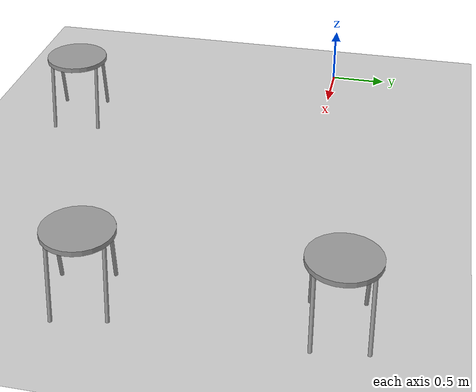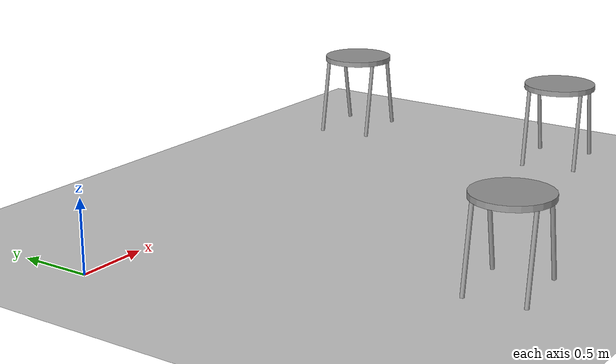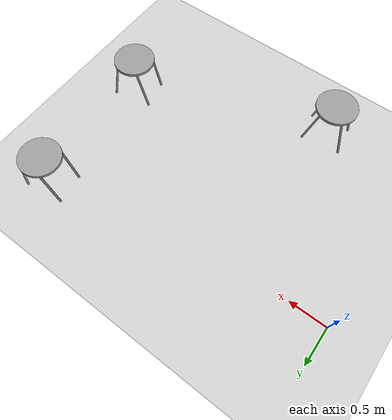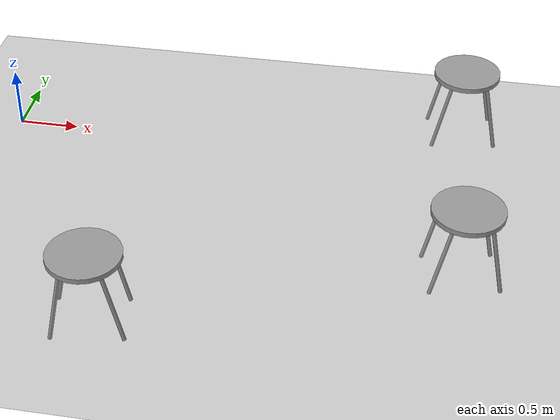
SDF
<sdf version="1.6">
 <world name="default">
  <model name="ground_plane">
   <static>1</static>
   <link name="link">
    <collision name="collision">
     <geometry><plane><normal>0 0 1</normal><size>100 100</size></plane></geometry>
     <surface><friction><ode><mu>100</mu><mu2>50</mu2></ode></friction></surface>
    </collision>
    <visual name="visual">
     <cast_shadows>0</cast_shadows>
     <geometry><plane><normal>0 0 1</normal><size>100 100</size></plane></geometry>
     <material>
      <script><uri>file://media/materials/scripts/gazebo.material</uri><name>Gazebo/Grey</name></script>
     </material>
    </visual>
   </link>
  </model>
  <model name="chair01">
   <link name="link_1">
    <pose>0 0 0.6 0 -0 0</pose>
    <inertial>
     <mass>1</mass>
     <inertia><ixx>0.145833</ixx><ixy>0</ixy><ixz>0</ixz><iyy>0.145833</iyy><iyz>0</iyz><izz>0.125</izz></inertia>
    </inertial>
    <visual name="visual">
     <geometry><cylinder><radius>0.27</radius><length>0.04</length></cylinder></geometry>
     <material>
      <lighting>1</lighting>
      <script><uri>file://media/materials/scripts/gazebo.material</uri><name>Gazebo/Grey</name></script>
      <shader type="pixel"><normal_map>__default__</normal_map></shader>
      <ambient>0.3 0.3 0.3 1</ambient>
      <diffuse>0.7 0.7 0.7 1</diffuse>
      <specular>0.01 0.01 0.01 1</specular>
      <emissive>0 0 0 1</emissive>
     </material>
    </visual>
    <collision name="collision">
     <geometry><cylinder><radius>0.27</radius><length>0.04</length></cylinder></geometry>
     <surface>
      <friction>
       <ode><mu>1</mu><mu2>1</mu2><fdir1>0 0 0</fdir1><slip1>0</slip1><slip2>0</slip2></ode>
       <torsional>
        <coefficient>1</coefficient>
        <patch_radius>0</patch_radius>
        <surface_radius>0</surface_radius>
        <use_patch_radius>1</use_patch_radius>
        <ode><slip>0</slip></ode>
       </torsional>
      </friction>
      <bounce><restitution_coefficient>0</restitution_coefficient><threshold>1e+06</threshold></bounce>
      <contact>
       <collide_without_contact>0</collide_without_contact>
       <collide_without_contact_bitmask>1</collide_without_contact_bitmask>
       <collide_bitmask>1</collide_bitmask>
       <ode>
        <soft_cfm>0</soft_cfm>
        <soft_erp>0.2</soft_erp>
        <kp>1e+13</kp>
        <kd>1</kd>
        <max_vel>0.01</max_vel>
        <min_depth>0</min_depth>
       </ode>
       <bullet>
        <split_impulse>1</split_impulse>
        <split_impulse_penetration_threshold>-0.01</split_impulse_penetration_threshold>
        <soft_cfm>0</soft_cfm>
        <soft_erp>0.2</soft_erp>
        <kp>1e+13</kp>
        <kd>1</kd>
       </bullet>
      </contact>
     </surface>
    </collision>
   </link>
   <link name="link_2">
    <pose>0.2 0.2 0.3 0 -0.2 0</pose>
    <inertial>
     <mass>1</mass>
     <inertia><ixx>0.145833</ixx><ixy>0</ixy><ixz>0</ixz><iyy>0.145833</iyy><iyz>0</iyz><izz>0.125</izz></inertia>
    </inertial>
    <visual name="visual">
     <geometry><cylinder><radius>0.015</radius><length>0.6</length></cylinder></geometry>
     <material>
      <lighting>1</lighting>
      <script><uri>file://media/materials/scripts/gazebo.material</uri><name>Gazebo/Grey</name></script>
      <shader type="pixel"><normal_map>__default__</normal_map></shader>
      <ambient>0.3 0.3 0.3 1</ambient>
      <diffuse>0.7 0.7 0.7 1</diffuse>
      <specular>0.01 0.01 0.01 1</specular>
      <emissive>0 0 0 1</emissive>
     </material>
    </visual>
    <collision name="collision">
     <geometry><cylinder><radius>0.015</radius><length>0.6</length></cylinder></geometry>
     <surface>
      <friction>
       <ode><mu>1</mu><mu2>1</mu2><fdir1>0 0 0</fdir1><slip1>0</slip1><slip2>0</slip2></ode>
       <torsional>
        <coefficient>1</coefficient>
        <patch_radius>0</patch_radius>
        <surface_radius>0</surface_radius>
        <use_patch_radius>1</use_patch_radius>
        <ode><slip>0</slip></ode>
       </torsional>
      </friction>
      <bounce><restitution_coefficient>0</restitution_coefficient><threshold>1e+06</threshold></bounce>
      <contact>
       <collide_without_contact>0</collide_without_contact>
       <collide_without_contact_bitmask>1</collide_without_contact_bitmask>
       <collide_bitmask>1</collide_bitmask>
       <ode>
        <soft_cfm>0</soft_cfm>
        <soft_erp>0.2</soft_erp>
        <kp>1e+13</kp>
        <kd>1</kd>
        <max_vel>0.01</max_vel>
        <min_depth>0</min_depth>
       </ode>
       <bullet>
        <split_impulse>1</split_impulse>
        <split_impulse_penetration_threshold>-0.01</split_impulse_penetration_threshold>
        <soft_cfm>0</soft_cfm>
        <soft_erp>0.2</soft_erp>
        <kp>1e+13</kp>
        <kd>1</kd>
       </bullet>
      </contact>
     </surface>
    </collision>
   </link>
   <link name="link_2_clone">
    <pose>0.2 -0.2 0.3 0 -0.2 0</pose>
    <inertial>
     <mass>1</mass>
     <inertia><ixx>0.145833</ixx><ixy>0</ixy><ixz>0</ixz><iyy>0.145833</iyy><iyz>0</iyz><izz>0.125</izz></inertia>
    </inertial>
    <visual name="visual">
     <geometry><cylinder><radius>0.015</radius><length>0.6</length></cylinder></geometry>
     <material>
      <lighting>1</lighting>
      <script><uri>file://media/materials/scripts/gazebo.material</uri><name>Gazebo/Grey</name></script>
      <shader type="pixel"><normal_map>__default__</normal_map></shader>
      <ambient>0.3 0.3 0.3 1</ambient>
      <diffuse>0.7 0.7 0.7 1</diffuse>
      <specular>0.01 0.01 0.01 1</specular>
      <emissive>0 0 0 1</emissive>
     </material>
    </visual>
    <collision name="collision">
     <geometry><cylinder><radius>0.015</radius><length>0.6</length></cylinder></geometry>
     <surface>
      <friction>
       <ode><mu>1</mu><mu2>1</mu2><fdir1>0 0 0</fdir1><slip1>0</slip1><slip2>0</slip2></ode>
       <torsional>
        <coefficient>1</coefficient>
        <patch_radius>0</patch_radius>
        <surface_radius>0</surface_radius>
        <use_patch_radius>1</use_patch_radius>
        <ode><slip>0</slip></ode>
       </torsional>
      </friction>
      <bounce><restitution_coefficient>0</restitution_coefficient><threshold>1e+06</threshold></bounce>
      <contact>
       <collide_without_contact>0</collide_without_contact>
       <collide_without_contact_bitmask>1</collide_without_contact_bitmask>
       <collide_bitmask>1</collide_bitmask>
       <ode>
        <soft_cfm>0</soft_cfm>
        <soft_erp>0.2</soft_erp>
        <kp>1e+13</kp>
        <kd>1</kd>
        <max_vel>0.01</max_vel>
        <min_depth>0</min_depth>
       </ode>
       <bullet>
        <split_impulse>1</split_impulse>
        <split_impulse_penetration_threshold>-0.01</split_impulse_penetration_threshold>
        <soft_cfm>0</soft_cfm>
        <soft_erp>0.2</soft_erp>
        <kp>1e+13</kp>
        <kd>1</kd>
       </bullet>
      </contact>
     </surface>
    </collision>
   </link>
   <link name="link_2_clone_0">
    <pose>-0.2 -0.2 0.3 0 0.2 0</pose>
    <inertial>
     <mass>1</mass>
     <inertia><ixx>0.145833</ixx><ixy>0</ixy><ixz>0</ixz><iyy>0.145833</iyy><iyz>0</iyz><izz>0.125</izz></inertia>
    </inertial>
    <visual name="visual">
     <geometry><cylinder><radius>0.015</radius><length>0.6</length></cylinder></geometry>
     <material>
      <lighting>1</lighting>
      <script><uri>file://media/materials/scripts/gazebo.material</uri><name>Gazebo/Grey</name></script>
      <shader type="pixel"><normal_map>__default__</normal_map></shader>
      <ambient>0.3 0.3 0.3 1</ambient>
      <diffuse>0.7 0.7 0.7 1</diffuse>
      <specular>0.01 0.01 0.01 1</specular>
      <emissive>0 0 0 1</emissive>
     </material>
    </visual>
    <collision name="collision">
     <geometry><cylinder><radius>0.015</radius><length>0.6</length></cylinder></geometry>
     <surface>
      <friction>
       <ode><mu>1</mu><mu2>1</mu2><fdir1>0 0 0</fdir1><slip1>0</slip1><slip2>0</slip2></ode>
       <torsional>
        <coefficient>1</coefficient>
        <patch_radius>0</patch_radius>
        <surface_radius>0</surface_radius>
        <use_patch_radius>1</use_patch_radius>
        <ode><slip>0</slip></ode>
       </torsional>
      </friction>
      <bounce><restitution_coefficient>0</restitution_coefficient><threshold>1e+06</threshold></bounce>
      <contact>
       <collide_without_contact>0</collide_without_contact>
       <collide_without_contact_bitmask>1</collide_without_contact_bitmask>
       <collide_bitmask>1</collide_bitmask>
       <ode>
        <soft_cfm>0</soft_cfm>
        <soft_erp>0.2</soft_erp>
        <kp>1e+13</kp>
        <kd>1</kd>
        <max_vel>0.01</max_vel>
        <min_depth>0</min_depth>
       </ode>
       <bullet>
        <split_impulse>1</split_impulse>
        <split_impulse_penetration_threshold>-0.01</split_impulse_penetration_threshold>
        <soft_cfm>0</soft_cfm>
        <soft_erp>0.2</soft_erp>
        <kp>1e+13</kp>
        <kd>1</kd>
       </bullet>
      </contact>
     </surface>
    </collision>
   </link>
   <link name="link_2_clone_1">
    <pose>-0.2 0.2 0.3 0 0.21 0</pose>
    <inertial>
     <mass>1</mass>
     <inertia><ixx>0.145833</ixx><ixy>0</ixy><ixz>0</ixz><iyy>0.145833</iyy><iyz>0</iyz><izz>0.125</izz></inertia>
    </inertial>
    <visual name="visual">
     <geometry><cylinder><radius>0.015</radius><length>0.6</length></cylinder></geometry>
     <material>
      <lighting>1</lighting>
      <script><uri>file://media/materials/scripts/gazebo.material</uri><name>Gazebo/Grey</name></script>
      <shader type="pixel"><normal_map>__default__</normal_map></shader>
      <ambient>0.3 0.3 0.3 1</ambient>
      <diffuse>0.7 0.7 0.7 1</diffuse>
      <specular>0.01 0.01 0.01 1</specular>
      <emissive>0 0 0 1</emissive>
     </material>
    </visual>
    <collision name="collision">
     <geometry><cylinder><radius>0.015</radius><length>0.6</length></cylinder></geometry>
     <surface>
      <friction>
       <ode><mu>1</mu><mu2>1</mu2><fdir1>0 0 0</fdir1><slip1>0</slip1><slip2>0</slip2></ode>
       <torsional>
        <coefficient>1</coefficient>
        <patch_radius>0</patch_radius>
        <surface_radius>0</surface_radius>
        <use_patch_radius>1</use_patch_radius>
        <ode><slip>0</slip></ode>
       </torsional>
      </friction>
      <bounce><restitution_coefficient>0</restitution_coefficient><threshold>1e+06</threshold></bounce>
      <contact>
       <collide_without_contact>0</collide_without_contact>
       <collide_without_contact_bitmask>1</collide_without_contact_bitmask>
       <collide_bitmask>1</collide_bitmask>
       <ode>
        <soft_cfm>0</soft_cfm>
        <soft_erp>0.2</soft_erp>
        <kp>1e+13</kp>
        <kd>1</kd>
        <max_vel>0.01</max_vel>
        <min_depth>0</min_depth>
       </ode>
       <bullet>
        <split_impulse>1</split_impulse>
        <split_impulse_penetration_threshold>-0.01</split_impulse_penetration_threshold>
        <soft_cfm>0</soft_cfm>
        <soft_erp>0.2</soft_erp>
        <kp>1e+13</kp>
        <kd>1</kd>
       </bullet>
      </contact>
     </surface>
    </collision>
   </link>
   <joint name="link_1_JOINT_1" type="revolute">
    <parent>link_1</parent>
    <child>link_2</child>
    <axis>
     <xyz>0 0 1</xyz>
     <use_parent_model_frame>0</use_parent_model_frame>
     <limit>
      <lower>-1.79769e+308</lower>
      <upper>1.79769e+308</upper>
      <effort>-1</effort>
      <velocity>-1</velocity>
     </limit>
     <dynamics>
      <spring_reference>0</spring_reference>
      <spring_stiffness>0</spring_stiffness>
      <damping>0</damping>
     </dynamics>
    </axis>
    <physics>
     <ode><limit><cfm>0</cfm><erp>0.2</erp></limit><suspension><cfm>0</cfm><erp>0.2</erp></suspension></ode>
    </physics>
   </joint>
   <joint name="link_1_JOINT_2" type="revolute">
    <parent>link_1</parent>
    <child>link_2_clone</child>
    <axis>
     <xyz>0 0 1</xyz>
     <use_parent_model_frame>0</use_parent_model_frame>
     <limit>
      <lower>-1.79769e+308</lower>
      <upper>1.79769e+308</upper>
      <effort>-1</effort>
      <velocity>-1</velocity>
     </limit>
     <dynamics>
      <spring_reference>0</spring_reference>
      <spring_stiffness>0</spring_stiffness>
      <damping>0</damping>
     </dynamics>
    </axis>
    <physics>
     <ode><limit><cfm>0</cfm><erp>0.2</erp></limit><suspension><cfm>0</cfm><erp>0.2</erp></suspension></ode>
    </physics>
   </joint>
   <joint name="link_1_JOINT_3" type="revolute">
    <parent>link_1</parent>
    <child>link_2_clone_0</child>
    <axis>
     <xyz>0 0 1</xyz>
     <use_parent_model_frame>0</use_parent_model_frame>
     <limit>
      <lower>-1.79769e+308</lower>
      <upper>1.79769e+308</upper>
      <effort>-1</effort>
      <velocity>-1</velocity>
     </limit>
     <dynamics>
      <spring_reference>0</spring_reference>
      <spring_stiffness>0</spring_stiffness>
      <damping>0</damping>
     </dynamics>
    </axis>
    <physics>
     <ode><limit><cfm>0</cfm><erp>0.2</erp></limit><suspension><cfm>0</cfm><erp>0.2</erp></suspension></ode>
    </physics>
   </joint>
   <joint name="link_1_JOINT_4" type="revolute">
    <parent>link_1</parent>
    <child>link_2_clone_1</child>
    <axis>
     <xyz>0 0 1</xyz>
     <use_parent_model_frame>0</use_parent_model_frame>
     <limit>
      <lower>-1.79769e+308</lower>
      <upper>1.79769e+308</upper>
      <effort>-1</effort>
      <velocity>-1</velocity>
     </limit>
     <dynamics>
      <spring_reference>0</spring_reference>
      <spring_stiffness>0</spring_stiffness>
      <damping>0</damping>
     </dynamics>
    </axis>
    <physics>
     <ode><limit><cfm>0</cfm><erp>0.2</erp></limit><suspension><cfm>0</cfm><erp>0.2</erp></suspension></ode>
    </physics>
   </joint>
   <static>0</static>
   <pose>3.83965 -1.33733 -0.003008 -0.000347 -0.000284 0.197622</pose>
  </model>
  <model name="chair01_2">
   <link name="link_1">
    <pose>0 0 0.6 0 -0 0</pose>
    <inertial>
     <mass>1</mass>
     <inertia><ixx>0.145833</ixx><ixy>0</ixy><ixz>0</ixz><iyy>0.145833</iyy><iyz>0</iyz><izz>0.125</izz></inertia>
    </inertial>
    <visual name="visual">
     <geometry><cylinder><radius>0.27</radius><length>0.04</length></cylinder></geometry>
     <material>
      <lighting>1</lighting>
      <script><uri>file://media/materials/scripts/gazebo.material</uri><name>Gazebo/Grey</name></script>
      <shader type="pixel"><normal_map>__default__</normal_map></shader>
      <ambient>0.3 0.3 0.3 1</ambient>
      <diffuse>0.7 0.7 0.7 1</diffuse>
      <specular>0.01 0.01 0.01 1</specular>
      <emissive>0 0 0 1</emissive>
     </material>
    </visual>
    <collision name="collision">
     <geometry><cylinder><radius>0.27</radius><length>0.04</length></cylinder></geometry>
     <surface>
      <friction>
       <ode><mu>1</mu><mu2>1</mu2><fdir1>0 0 0</fdir1><slip1>0</slip1><slip2>0</slip2></ode>
       <torsional>
        <coefficient>1</coefficient>
        <patch_radius>0</patch_radius>
        <surface_radius>0</surface_radius>
        <use_patch_radius>1</use_patch_radius>
        <ode><slip>0</slip></ode>
       </torsional>
      </friction>
      <bounce><restitution_coefficient>0</restitution_coefficient><threshold>1e+06</threshold></bounce>
      <contact>
       <collide_without_contact>0</collide_without_contact>
       <collide_without_contact_bitmask>1</collide_without_contact_bitmask>
       <collide_bitmask>1</collide_bitmask>
       <ode>
        <soft_cfm>0</soft_cfm>
        <soft_erp>0.2</soft_erp>
        <kp>1e+13</kp>
        <kd>1</kd>
        <max_vel>0.01</max_vel>
        <min_depth>0</min_depth>
       </ode>
       <bullet>
        <split_impulse>1</split_impulse>
        <split_impulse_penetration_threshold>-0.01</split_impulse_penetration_threshold>
        <soft_cfm>0</soft_cfm>
        <soft_erp>0.2</soft_erp>
        <kp>1e+13</kp>
        <kd>1</kd>
       </bullet>
      </contact>
     </surface>
    </collision>
   </link>
   <link name="link_2">
    <pose>0.2 0.2 0.3 0 -0.2 0</pose>
    <inertial>
     <mass>1</mass>
     <inertia><ixx>0.145833</ixx><ixy>0</ixy><ixz>0</ixz><iyy>0.145833</iyy><iyz>0</iyz><izz>0.125</izz></inertia>
    </inertial>
    <visual name="visual">
     <geometry><cylinder><radius>0.015</radius><length>0.6</length></cylinder></geometry>
     <material>
      <lighting>1</lighting>
      <script><uri>file://media/materials/scripts/gazebo.material</uri><name>Gazebo/Grey</name></script>
      <shader type="pixel"><normal_map>__default__</normal_map></shader>
      <ambient>0.3 0.3 0.3 1</ambient>
      <diffuse>0.7 0.7 0.7 1</diffuse>
      <specular>0.01 0.01 0.01 1</specular>
      <emissive>0 0 0 1</emissive>
     </material>
    </visual>
    <collision name="collision">
     <geometry><cylinder><radius>0.015</radius><length>0.6</length></cylinder></geometry>
     <surface>
      <friction>
       <ode><mu>1</mu><mu2>1</mu2><fdir1>0 0 0</fdir1><slip1>0</slip1><slip2>0</slip2></ode>
       <torsional>
        <coefficient>1</coefficient>
        <patch_radius>0</patch_radius>
        <surface_radius>0</surface_radius>
        <use_patch_radius>1</use_patch_radius>
        <ode><slip>0</slip></ode>
       </torsional>
      </friction>
      <bounce><restitution_coefficient>0</restitution_coefficient><threshold>1e+06</threshold></bounce>
      <contact>
       <collide_without_contact>0</collide_without_contact>
       <collide_without_contact_bitmask>1</collide_without_contact_bitmask>
       <collide_bitmask>1</collide_bitmask>
       <ode>
        <soft_cfm>0</soft_cfm>
        <soft_erp>0.2</soft_erp>
        <kp>1e+13</kp>
        <kd>1</kd>
        <max_vel>0.01</max_vel>
        <min_depth>0</min_depth>
       </ode>
       <bullet>
        <split_impulse>1</split_impulse>
        <split_impulse_penetration_threshold>-0.01</split_impulse_penetration_threshold>
        <soft_cfm>0</soft_cfm>
        <soft_erp>0.2</soft_erp>
        <kp>1e+13</kp>
        <kd>1</kd>
       </bullet>
      </contact>
     </surface>
    </collision>
   </link>
   <link name="link_2_clone">
    <pose>0.2 -0.2 0.3 0 -0.2 0</pose>
    <inertial>
     <mass>1</mass>
     <inertia><ixx>0.145833</ixx><ixy>0</ixy><ixz>0</ixz><iyy>0.145833</iyy><iyz>0</iyz><izz>0.125</izz></inertia>
    </inertial>
    <visual name="visual">
     <geometry><cylinder><radius>0.015</radius><length>0.6</length></cylinder></geometry>
     <material>
      <lighting>1</lighting>
      <script><uri>file://media/materials/scripts/gazebo.material</uri><name>Gazebo/Grey</name></script>
      <shader type="pixel"><normal_map>__default__</normal_map></shader>
      <ambient>0.3 0.3 0.3 1</ambient>
      <diffuse>0.7 0.7 0.7 1</diffuse>
      <specular>0.01 0.01 0.01 1</specular>
      <emissive>0 0 0 1</emissive>
     </material>
    </visual>
    <collision name="collision">
     <geometry><cylinder><radius>0.015</radius><length>0.6</length></cylinder></geometry>
     <surface>
      <friction>
       <ode><mu>1</mu><mu2>1</mu2><fdir1>0 0 0</fdir1><slip1>0</slip1><slip2>0</slip2></ode>
       <torsional>
        <coefficient>1</coefficient>
        <patch_radius>0</patch_radius>
        <surface_radius>0</surface_radius>
        <use_patch_radius>1</use_patch_radius>
        <ode><slip>0</slip></ode>
       </torsional>
      </friction>
      <bounce><restitution_coefficient>0</restitution_coefficient><threshold>1e+06</threshold></bounce>
      <contact>
       <collide_without_contact>0</collide_without_contact>
       <collide_without_contact_bitmask>1</collide_without_contact_bitmask>
       <collide_bitmask>1</collide_bitmask>
       <ode>
        <soft_cfm>0</soft_cfm>
        <soft_erp>0.2</soft_erp>
        <kp>1e+13</kp>
        <kd>1</kd>
        <max_vel>0.01</max_vel>
        <min_depth>0</min_depth>
       </ode>
       <bullet>
        <split_impulse>1</split_impulse>
        <split_impulse_penetration_threshold>-0.01</split_impulse_penetration_threshold>
        <soft_cfm>0</soft_cfm>
        <soft_erp>0.2</soft_erp>
        <kp>1e+13</kp>
        <kd>1</kd>
       </bullet>
      </contact>
     </surface>
    </collision>
   </link>
   <link name="link_2_clone_0">
    <pose>-0.2 -0.2 0.3 0 0.2 0</pose>
    <inertial>
     <mass>1</mass>
     <inertia><ixx>0.145833</ixx><ixy>0</ixy><ixz>0</ixz><iyy>0.145833</iyy><iyz>0</iyz><izz>0.125</izz></inertia>
    </inertial>
    <visual name="visual">
     <geometry><cylinder><radius>0.015</radius><length>0.6</length></cylinder></geometry>
     <material>
      <lighting>1</lighting>
      <script><uri>file://media/materials/scripts/gazebo.material</uri><name>Gazebo/Grey</name></script>
      <shader type="pixel"><normal_map>__default__</normal_map></shader>
      <ambient>0.3 0.3 0.3 1</ambient>
      <diffuse>0.7 0.7 0.7 1</diffuse>
      <specular>0.01 0.01 0.01 1</specular>
      <emissive>0 0 0 1</emissive>
     </material>
    </visual>
    <collision name="collision">
     <geometry><cylinder><radius>0.015</radius><length>0.6</length></cylinder></geometry>
     <surface>
      <friction>
       <ode><mu>1</mu><mu2>1</mu2><fdir1>0 0 0</fdir1><slip1>0</slip1><slip2>0</slip2></ode>
       <torsional>
        <coefficient>1</coefficient>
        <patch_radius>0</patch_radius>
        <surface_radius>0</surface_radius>
        <use_patch_radius>1</use_patch_radius>
        <ode><slip>0</slip></ode>
       </torsional>
      </friction>
      <bounce><restitution_coefficient>0</restitution_coefficient><threshold>1e+06</threshold></bounce>
      <contact>
       <collide_without_contact>0</collide_without_contact>
       <collide_without_contact_bitmask>1</collide_without_contact_bitmask>
       <collide_bitmask>1</collide_bitmask>
       <ode>
        <soft_cfm>0</soft_cfm>
        <soft_erp>0.2</soft_erp>
        <kp>1e+13</kp>
        <kd>1</kd>
        <max_vel>0.01</max_vel>
        <min_depth>0</min_depth>
       </ode>
       <bullet>
        <split_impulse>1</split_impulse>
        <split_impulse_penetration_threshold>-0.01</split_impulse_penetration_threshold>
        <soft_cfm>0</soft_cfm>
        <soft_erp>0.2</soft_erp>
        <kp>1e+13</kp>
        <kd>1</kd>
       </bullet>
      </contact>
     </surface>
    </collision>
   </link>
   <link name="link_2_clone_1">
    <pose>-0.2 0.2 0.3 0 0.21 0</pose>
    <inertial>
     <mass>1</mass>
     <inertia><ixx>0.145833</ixx><ixy>0</ixy><ixz>0</ixz><iyy>0.145833</iyy><iyz>0</iyz><izz>0.125</izz></inertia>
    </inertial>
    <visual name="visual">
     <geometry><cylinder><radius>0.015</radius><length>0.6</length></cylinder></geometry>
     <material>
      <lighting>1</lighting>
      <script><uri>file://media/materials/scripts/gazebo.material</uri><name>Gazebo/Grey</name></script>
      <shader type="pixel"><normal_map>__default__</normal_map></shader>
      <ambient>0.3 0.3 0.3 1</ambient>
      <diffuse>0.7 0.7 0.7 1</diffuse>
      <specular>0.01 0.01 0.01 1</specular>
      <emissive>0 0 0 1</emissive>
     </material>
    </visual>
    <collision name="collision">
     <geometry><cylinder><radius>0.015</radius><length>0.6</length></cylinder></geometry>
     <surface>
      <friction>
       <ode><mu>1</mu><mu2>1</mu2><fdir1>0 0 0</fdir1><slip1>0</slip1><slip2>0</slip2></ode>
       <torsional>
        <coefficient>1</coefficient>
        <patch_radius>0</patch_radius>
        <surface_radius>0</surface_radius>
        <use_patch_radius>1</use_patch_radius>
        <ode><slip>0</slip></ode>
       </torsional>
      </friction>
      <bounce><restitution_coefficient>0</restitution_coefficient><threshold>1e+06</threshold></bounce>
      <contact>
       <collide_without_contact>0</collide_without_contact>
       <collide_without_contact_bitmask>1</collide_without_contact_bitmask>
       <collide_bitmask>1</collide_bitmask>
       <ode>
        <soft_cfm>0</soft_cfm>
        <soft_erp>0.2</soft_erp>
        <kp>1e+13</kp>
        <kd>1</kd>
        <max_vel>0.01</max_vel>
        <min_depth>0</min_depth>
       </ode>
       <bullet>
        <split_impulse>1</split_impulse>
        <split_impulse_penetration_threshold>-0.01</split_impulse_penetration_threshold>
        <soft_cfm>0</soft_cfm>
        <soft_erp>0.2</soft_erp>
        <kp>1e+13</kp>
        <kd>1</kd>
       </bullet>
      </contact>
     </surface>
    </collision>
   </link>
   <joint name="link_1_JOINT_1" type="revolute">
    <parent>link_1</parent>
    <child>link_2</child>
    <axis>
     <xyz>0 0 1</xyz>
     <use_parent_model_frame>0</use_parent_model_frame>
     <limit>
      <lower>-1.79769e+308</lower>
      <upper>1.79769e+308</upper>
      <effort>-1</effort>
      <velocity>-1</velocity>
     </limit>
     <dynamics>
      <spring_reference>0</spring_reference>
      <spring_stiffness>0</spring_stiffness>
      <damping>0</damping>
     </dynamics>
    </axis>
    <physics>
     <ode><limit><cfm>0</cfm><erp>0.2</erp></limit><suspension><cfm>0</cfm><erp>0.2</erp></suspension></ode>
    </physics>
   </joint>
   <joint name="link_1_JOINT_2" type="revolute">
    <parent>link_1</parent>
    <child>link_2_clone</child>
    <axis>
     <xyz>0 0 1</xyz>
     <use_parent_model_frame>0</use_parent_model_frame>
     <limit>
      <lower>-1.79769e+308</lower>
      <upper>1.79769e+308</upper>
      <effort>-1</effort>
      <velocity>-1</velocity>
     </limit>
     <dynamics>
      <spring_reference>0</spring_reference>
      <spring_stiffness>0</spring_stiffness>
      <damping>0</damping>
     </dynamics>
    </axis>
    <physics>
     <ode><limit><cfm>0</cfm><erp>0.2</erp></limit><suspension><cfm>0</cfm><erp>0.2</erp></suspension></ode>
    </physics>
   </joint>
   <joint name="link_1_JOINT_3" type="revolute">
    <parent>link_1</parent>
    <child>link_2_clone_0</child>
    <axis>
     <xyz>0 0 1</xyz>
     <use_parent_model_frame>0</use_parent_model_frame>
     <limit>
      <lower>-1.79769e+308</lower>
      <upper>1.79769e+308</upper>
      <effort>-1</effort>
      <velocity>-1</velocity>
     </limit>
     <dynamics>
      <spring_reference>0</spring_reference>
      <spring_stiffness>0</spring_stiffness>
      <damping>0</damping>
     </dynamics>
    </axis>
    <physics>
     <ode><limit><cfm>0</cfm><erp>0.2</erp></limit><suspension><cfm>0</cfm><erp>0.2</erp></suspension></ode>
    </physics>
   </joint>
   <joint name="link_1_JOINT_4" type="revolute">
    <parent>link_1</parent>
    <child>link_2_clone_1</child>
    <axis>
     <xyz>0 0 1</xyz>
     <use_parent_model_frame>0</use_parent_model_frame>
     <limit>
      <lower>-1.79769e+308</lower>
      <upper>1.79769e+308</upper>
      <effort>-1</effort>
      <velocity>-1</velocity>
     </limit>
     <dynamics>
      <spring_reference>0</spring_reference>
      <spring_stiffness>0</spring_stiffness>
      <damping>0</damping>
     </dynamics>
    </axis>
    <physics>
     <ode><limit><cfm>0</cfm><erp>0.2</erp></limit><suspension><cfm>0</cfm><erp>0.2</erp></suspension></ode>
    </physics>
   </joint>
   <static>0</static>
   <pose>1.28599 -2.26224 -0.00301 -0.00076 -0.00062 0.144231</pose>
  </model>
  <model name="chair01_3">
   <link name="link_1">
    <pose>0 0 0.6 0 -0 0</pose>
    <inertial>
     <mass>1</mass>
     <inertia><ixx>0.145833</ixx><ixy>0</ixy><ixz>0</ixz><iyy>0.145833</iyy><iyz>0</iyz><izz>0.125</izz></inertia>
    </inertial>
    <visual name="visual">
     <geometry><cylinder><radius>0.27</radius><length>0.04</length></cylinder></geometry>
     <material>
      <lighting>1</lighting>
      <script><uri>file://media/materials/scripts/gazebo.material</uri><name>Gazebo/Grey</name></script>
      <shader type="pixel"><normal_map>__default__</normal_map></shader>
      <ambient>0.3 0.3 0.3 1</ambient>
      <diffuse>0.7 0.7 0.7 1</diffuse>
      <specular>0.01 0.01 0.01 1</specular>
      <emissive>0 0 0 1</emissive>
     </material>
    </visual>
    <collision name="collision">
     <geometry><cylinder><radius>0.27</radius><length>0.04</length></cylinder></geometry>
     <surface>
      <friction>
       <ode><mu>1</mu><mu2>1</mu2><fdir1>0 0 0</fdir1><slip1>0</slip1><slip2>0</slip2></ode>
       <torsional>
        <coefficient>1</coefficient>
        <patch_radius>0</patch_radius>
        <surface_radius>0</surface_radius>
        <use_patch_radius>1</use_patch_radius>
        <ode><slip>0</slip></ode>
       </torsional>
      </friction>
      <bounce><restitution_coefficient>0</restitution_coefficient><threshold>1e+06</threshold></bounce>
      <contact>
       <collide_without_contact>0</collide_without_contact>
       <collide_without_contact_bitmask>1</collide_without_contact_bitmask>
       <collide_bitmask>1</collide_bitmask>
       <ode>
        <soft_cfm>0</soft_cfm>
        <soft_erp>0.2</soft_erp>
        <kp>1e+13</kp>
        <kd>1</kd>
        <max_vel>0.01</max_vel>
        <min_depth>0</min_depth>
       </ode>
       <bullet>
        <split_impulse>1</split_impulse>
        <split_impulse_penetration_threshold>-0.01</split_impulse_penetration_threshold>
        <soft_cfm>0</soft_cfm>
        <soft_erp>0.2</soft_erp>
        <kp>1e+13</kp>
        <kd>1</kd>
       </bullet>
      </contact>
     </surface>
    </collision>
   </link>
   <link name="link_2">
    <pose>0.2 0.2 0.3 0 -0.2 0</pose>
    <inertial>
     <mass>1</mass>
     <inertia><ixx>0.145833</ixx><ixy>0</ixy><ixz>0</ixz><iyy>0.145833</iyy><iyz>0</iyz><izz>0.125</izz></inertia>
    </inertial>
    <visual name="visual">
     <geometry><cylinder><radius>0.015</radius><length>0.6</length></cylinder></geometry>
     <material>
      <lighting>1</lighting>
      <script><uri>file://media/materials/scripts/gazebo.material</uri><name>Gazebo/Grey</name></script>
      <shader type="pixel"><normal_map>__default__</normal_map></shader>
      <ambient>0.3 0.3 0.3 1</ambient>
      <diffuse>0.7 0.7 0.7 1</diffuse>
      <specular>0.01 0.01 0.01 1</specular>
      <emissive>0 0 0 1</emissive>
     </material>
    </visual>
    <collision name="collision">
     <geometry><cylinder><radius>0.015</radius><length>0.6</length></cylinder></geometry>
     <surface>
      <friction>
       <ode><mu>1</mu><mu2>1</mu2><fdir1>0 0 0</fdir1><slip1>0</slip1><slip2>0</slip2></ode>
       <torsional>
        <coefficient>1</coefficient>
        <patch_radius>0</patch_radius>
        <surface_radius>0</surface_radius>
        <use_patch_radius>1</use_patch_radius>
        <ode><slip>0</slip></ode>
       </torsional>
      </friction>
      <bounce><restitution_coefficient>0</restitution_coefficient><threshold>1e+06</threshold></bounce>
      <contact>
       <collide_without_contact>0</collide_without_contact>
       <collide_without_contact_bitmask>1</collide_without_contact_bitmask>
       <collide_bitmask>1</collide_bitmask>
       <ode>
        <soft_cfm>0</soft_cfm>
        <soft_erp>0.2</soft_erp>
        <kp>1e+13</kp>
        <kd>1</kd>
        <max_vel>0.01</max_vel>
        <min_depth>0</min_depth>
       </ode>
       <bullet>
        <split_impulse>1</split_impulse>
        <split_impulse_penetration_threshold>-0.01</split_impulse_penetration_threshold>
        <soft_cfm>0</soft_cfm>
        <soft_erp>0.2</soft_erp>
        <kp>1e+13</kp>
        <kd>1</kd>
       </bullet>
      </contact>
     </surface>
    </collision>
   </link>
   <link name="link_2_clone">
    <pose>0.2 -0.2 0.3 0 -0.2 0</pose>
    <inertial>
     <mass>1</mass>
     <inertia><ixx>0.145833</ixx><ixy>0</ixy><ixz>0</ixz><iyy>0.145833</iyy><iyz>0</iyz><izz>0.125</izz></inertia>
    </inertial>
    <visual name="visual">
     <geometry><cylinder><radius>0.015</radius><length>0.6</length></cylinder></geometry>
     <material>
      <lighting>1</lighting>
      <script><uri>file://media/materials/scripts/gazebo.material</uri><name>Gazebo/Grey</name></script>
      <shader type="pixel"><normal_map>__default__</normal_map></shader>
      <ambient>0.3 0.3 0.3 1</ambient>
      <diffuse>0.7 0.7 0.7 1</diffuse>
      <specular>0.01 0.01 0.01 1</specular>
      <emissive>0 0 0 1</emissive>
     </material>
    </visual>
    <collision name="collision">
     <geometry><cylinder><radius>0.015</radius><length>0.6</length></cylinder></geometry>
     <surface>
      <friction>
       <ode><mu>1</mu><mu2>1</mu2><fdir1>0 0 0</fdir1><slip1>0</slip1><slip2>0</slip2></ode>
       <torsional>
        <coefficient>1</coefficient>
        <patch_radius>0</patch_radius>
        <surface_radius>0</surface_radius>
        <use_patch_radius>1</use_patch_radius>
        <ode><slip>0</slip></ode>
       </torsional>
      </friction>
      <bounce><restitution_coefficient>0</restitution_coefficient><threshold>1e+06</threshold></bounce>
      <contact>
       <collide_without_contact>0</collide_without_contact>
       <collide_without_contact_bitmask>1</collide_without_contact_bitmask>
       <collide_bitmask>1</collide_bitmask>
       <ode>
        <soft_cfm>0</soft_cfm>
        <soft_erp>0.2</soft_erp>
        <kp>1e+13</kp>
        <kd>1</kd>
        <max_vel>0.01</max_vel>
        <min_depth>0</min_depth>
       </ode>
       <bullet>
        <split_impulse>1</split_impulse>
        <split_impulse_penetration_threshold>-0.01</split_impulse_penetration_threshold>
        <soft_cfm>0</soft_cfm>
        <soft_erp>0.2</soft_erp>
        <kp>1e+13</kp>
        <kd>1</kd>
       </bullet>
      </contact>
     </surface>
    </collision>
   </link>
   <link name="link_2_clone_0">
    <pose>-0.2 -0.2 0.3 0 0.2 0</pose>
    <inertial>
     <mass>1</mass>
     <inertia><ixx>0.145833</ixx><ixy>0</ixy><ixz>0</ixz><iyy>0.145833</iyy><iyz>0</iyz><izz>0.125</izz></inertia>
    </inertial>
    <visual name="visual">
     <geometry><cylinder><radius>0.015</radius><length>0.6</length></cylinder></geometry>
     <material>
      <lighting>1</lighting>
      <script><uri>file://media/materials/scripts/gazebo.material</uri><name>Gazebo/Grey</name></script>
      <shader type="pixel"><normal_map>__default__</normal_map></shader>
      <ambient>0.3 0.3 0.3 1</ambient>
      <diffuse>0.7 0.7 0.7 1</diffuse>
      <specular>0.01 0.01 0.01 1</specular>
      <emissive>0 0 0 1</emissive>
     </material>
    </visual>
    <collision name="collision">
     <geometry><cylinder><radius>0.015</radius><length>0.6</length></cylinder></geometry>
     <surface>
      <friction>
       <ode><mu>1</mu><mu2>1</mu2><fdir1>0 0 0</fdir1><slip1>0</slip1><slip2>0</slip2></ode>
       <torsional>
        <coefficient>1</coefficient>
        <patch_radius>0</patch_radius>
        <surface_radius>0</surface_radius>
        <use_patch_radius>1</use_patch_radius>
        <ode><slip>0</slip></ode>
       </torsional>
      </friction>
      <bounce><restitution_coefficient>0</restitution_coefficient><threshold>1e+06</threshold></bounce>
      <contact>
       <collide_without_contact>0</collide_without_contact>
       <collide_without_contact_bitmask>1</collide_without_contact_bitmask>
       <collide_bitmask>1</collide_bitmask>
       <ode>
        <soft_cfm>0</soft_cfm>
        <soft_erp>0.2</soft_erp>
        <kp>1e+13</kp>
        <kd>1</kd>
        <max_vel>0.01</max_vel>
        <min_depth>0</min_depth>
       </ode>
       <bullet>
        <split_impulse>1</split_impulse>
        <split_impulse_penetration_threshold>-0.01</split_impulse_penetration_threshold>
        <soft_cfm>0</soft_cfm>
        <soft_erp>0.2</soft_erp>
        <kp>1e+13</kp>
        <kd>1</kd>
       </bullet>
      </contact>
     </surface>
    </collision>
   </link>
   <link name="link_2_clone_1">
    <pose>-0.2 0.2 0.3 0 0.21 0</pose>
    <inertial>
     <mass>1</mass>
     <inertia><ixx>0.145833</ixx><ixy>0</ixy><ixz>0</ixz><iyy>0.145833</iyy><iyz>0</iyz><izz>0.125</izz></inertia>
    </inertial>
    <visual name="visual">
     <geometry><cylinder><radius>0.015</radius><length>0.6</length></cylinder></geometry>
     <material>
      <lighting>1</lighting>
      <script><uri>file://media/materials/scripts/gazebo.material</uri><name>Gazebo/Grey</name></script>
      <shader type="pixel"><normal_map>__default__</normal_map></shader>
      <ambient>0.3 0.3 0.3 1</ambient>
      <diffuse>0.7 0.7 0.7 1</diffuse>
      <specular>0.01 0.01 0.01 1</specular>
      <emissive>0 0 0 1</emissive>
     </material>
    </visual>
    <collision name="collision">
     <geometry><cylinder><radius>0.015</radius><length>0.6</length></cylinder></geometry>
     <surface>
      <friction>
       <ode><mu>1</mu><mu2>1</mu2><fdir1>0 0 0</fdir1><slip1>0</slip1><slip2>0</slip2></ode>
       <torsional>
        <coefficient>1</coefficient>
        <patch_radius>0</patch_radius>
        <surface_radius>0</surface_radius>
        <use_patch_radius>1</use_patch_radius>
        <ode><slip>0</slip></ode>
       </torsional>
      </friction>
      <bounce><restitution_coefficient>0</restitution_coefficient><threshold>1e+06</threshold></bounce>
      <contact>
       <collide_without_contact>0</collide_without_contact>
       <collide_without_contact_bitmask>1</collide_without_contact_bitmask>
       <collide_bitmask>1</collide_bitmask>
       <ode>
        <soft_cfm>0</soft_cfm>
        <soft_erp>0.2</soft_erp>
        <kp>1e+13</kp>
        <kd>1</kd>
        <max_vel>0.01</max_vel>
        <min_depth>0</min_depth>
       </ode>
       <bullet>
        <split_impulse>1</split_impulse>
        <split_impulse_penetration_threshold>-0.01</split_impulse_penetration_threshold>
        <soft_cfm>0</soft_cfm>
        <soft_erp>0.2</soft_erp>
        <kp>1e+13</kp>
        <kd>1</kd>
       </bullet>
      </contact>
     </surface>
    </collision>
   </link>
   <joint name="link_1_JOINT_1" type="revolute">
    <parent>link_1</parent>
    <child>link_2</child>
    <axis>
     <xyz>0 0 1</xyz>
     <use_parent_model_frame>0</use_parent_model_frame>
     <limit>
      <lower>-1.79769e+308</lower>
      <upper>1.79769e+308</upper>
      <effort>-1</effort>
      <velocity>-1</velocity>
     </limit>
     <dynamics>
      <spring_reference>0</spring_reference>
      <spring_stiffness>0</spring_stiffness>
      <damping>0</damping>
     </dynamics>
    </axis>
    <physics>
     <ode><limit><cfm>0</cfm><erp>0.2</erp></limit><suspension><cfm>0</cfm><erp>0.2</erp></suspension></ode>
    </physics>
   </joint>
   <joint name="link_1_JOINT_2" type="revolute">
    <parent>link_1</parent>
    <child>link_2_clone</child>
    <axis>
     <xyz>0 0 1</xyz>
     <use_parent_model_frame>0</use_parent_model_frame>
     <limit>
      <lower>-1.79769e+308</lower>
      <upper>1.79769e+308</upper>
      <effort>-1</effort>
      <velocity>-1</velocity>
     </limit>
     <dynamics>
      <spring_reference>0</spring_reference>
      <spring_stiffness>0</spring_stiffness>
      <damping>0</damping>
     </dynamics>
    </axis>
    <physics>
     <ode><limit><cfm>0</cfm><erp>0.2</erp></limit><suspension><cfm>0</cfm><erp>0.2</erp></suspension></ode>
    </physics>
   </joint>
   <joint name="link_1_JOINT_3" type="revolute">
    <parent>link_1</parent>
    <child>link_2_clone_0</child>
    <axis>
     <xyz>0 0 1</xyz>
     <use_parent_model_frame>0</use_parent_model_frame>
     <limit>
      <lower>-1.79769e+308</lower>
      <upper>1.79769e+308</upper>
      <effort>-1</effort>
      <velocity>-1</velocity>
     </limit>
     <dynamics>
      <spring_reference>0</spring_reference>
      <spring_stiffness>0</spring_stiffness>
      <damping>0</damping>
     </dynamics>
    </axis>
    <physics>
     <ode><limit><cfm>0</cfm><erp>0.2</erp></limit><suspension><cfm>0</cfm><erp>0.2</erp></suspension></ode>
    </physics>
   </joint>
   <joint name="link_1_JOINT_4" type="revolute">
    <parent>link_1</parent>
    <child>link_2_clone_1</child>
    <axis>
     <xyz>0 0 1</xyz>
     <use_parent_model_frame>0</use_parent_model_frame>
     <limit>
      <lower>-1.79769e+308</lower>
      <upper>1.79769e+308</upper>
      <effort>-1</effort>
      <velocity>-1</velocity>
     </limit>
     <dynamics>
      <spring_reference>0</spring_reference>
      <spring_stiffness>0</spring_stiffness>
      <damping>0</damping>
     </dynamics>
    </axis>
    <physics>
     <ode><limit><cfm>0</cfm><erp>0.2</erp></limit><suspension><cfm>0</cfm><erp>0.2</erp></suspension></ode>
    </physics>
   </joint>
   <static>0</static>
   <pose>3.76856 0.487781 -0.00301 -0.000237 -0.000193 0.135636</pose>
  </model>
 </world>
</sdf>
